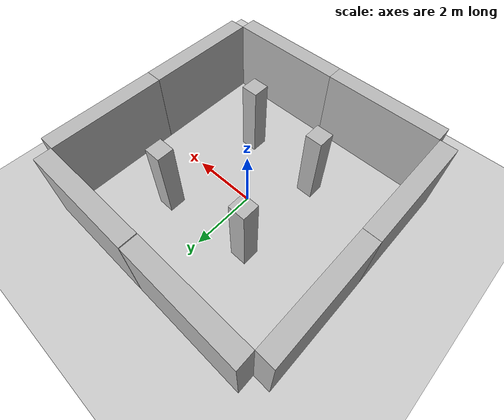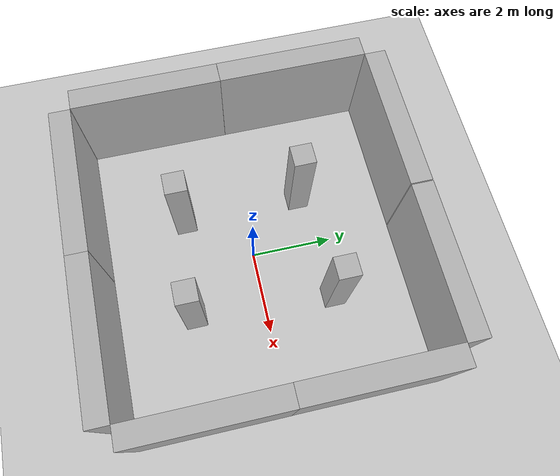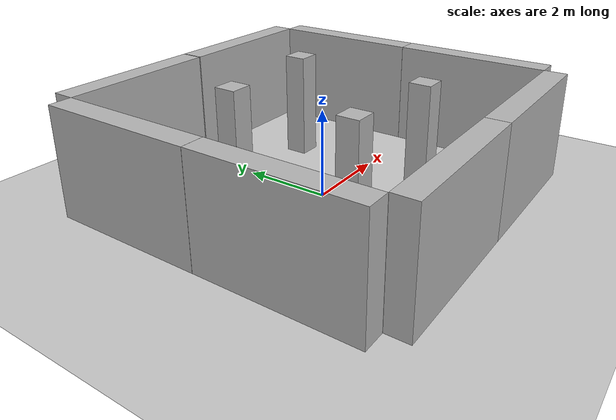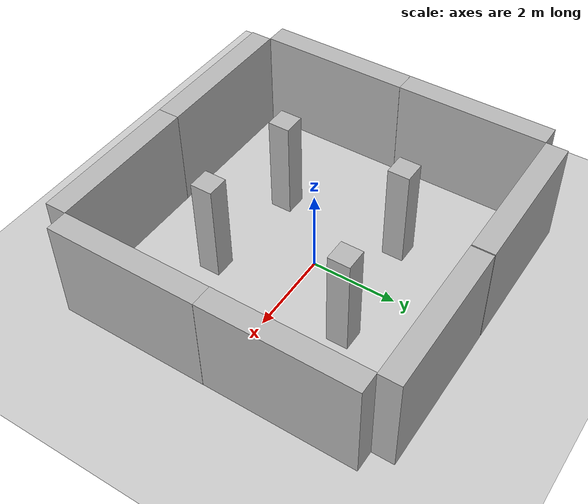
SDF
<sdf version="1.7">
 <world name="default">
  <light name="sun" type="directional">
   <pose>0 0 10 0 -0 0</pose>
   <diffuse>0.8 0.8 0.8 1</diffuse>
   <specular>0.1 0.1 0.1 1</specular>
   <attenuation>
    <range>1000</range>
    <constant>0.9</constant>
    <linear>0.01</linear>
    <quadratic>0.001</quadratic>
   </attenuation>
   <direction>-0.5 0.5 -1</direction>
   <spot><inner_angle>0</inner_angle><outer_angle>0</outer_angle><falloff>0</falloff></spot>
  </light>
  <model name="ground_plane">
   <static>1</static>
   <link name="link">
    <collision name="collision">
     <geometry><plane><normal>0 0 1</normal><size>100 100</size></plane></geometry>
     <surface><friction><ode><mu>100</mu><mu2>50</mu2></ode></friction></surface>
    </collision>
    <visual name="visual">
     <cast_shadows>0</cast_shadows>
     <geometry><plane><normal>0 0 1</normal><size>100 100</size></plane></geometry>
     <material>
      <script><uri>file://media/materials/scripts/gazebo.material</uri><name>Gazebo/Grey</name></script>
     </material>
    </visual>
   </link>
  </model>
  <gravity>0 0 -9.8</gravity>
  <magnetic_field>6e-06 2.3e-05 -4.2e-05</magnetic_field>
  <atmosphere type="adiabatic"/>
  <physics name="default_physics" default="0" type="ode">
   <max_step_size>0.001</max_step_size>
   <real_time_factor>1</real_time_factor>
   <real_time_update_rate>0</real_time_update_rate>
  </physics>
  <scene><ambient>0.4 0.4 0.4 1</ambient><background>0.7 0.7 0.7 1</background><shadows>1</shadows></scene>
  <spherical_coordinates>
   <surface_model>EARTH_WGS84</surface_model>
   <latitude_deg>0</latitude_deg>
   <longitude_deg>0</longitude_deg>
   <elevation>0</elevation>
   <heading_deg>0</heading_deg>
  </spherical_coordinates>
  <model name="mywall0_0">
   <static>1</static>
   <link name="link">
    <pose>0 0 1.4 0 -0 0</pose>
    <collision name="collision"><geometry><box><size>3.5 0.5 2.4</size></box></geometry></collision>
    <visual name="visual">
     <cast_shadows>0</cast_shadows>
     <geometry><box><size>3.5 0.5 2.4</size></box></geometry>
     <material>
      <script>
       <uri>model://mywall0/materials/scripts</uri>
       <uri>model://mywall0/materials/textures</uri>
       <name>vrc/mywall0</name>
      </script>
     </material>
    </visual>
   </link>
   <pose>1.77534 3.75 0 0 -0 0</pose>
  </model>
  <model name="mywall0_1">
   <static>1</static>
   <link name="link">
    <pose>0 0 1.4 0 -0 0</pose>
    <collision name="collision"><geometry><box><size>3.5 0.5 2.4</size></box></geometry></collision>
    <visual name="visual">
     <cast_shadows>0</cast_shadows>
     <geometry><box><size>3.5 0.5 2.4</size></box></geometry>
     <material>
      <script>
       <uri>model://mywall0/materials/scripts</uri>
       <uri>model://mywall0/materials/textures</uri>
       <name>vrc/mywall0</name>
      </script>
     </material>
    </visual>
   </link>
   <pose>-1.74865 3.75 0 0 -0 0</pose>
  </model>
  <model name="mywall0_2">
   <static>1</static>
   <link name="link">
    <pose>0 0 1.4 0 -0 0</pose>
    <collision name="collision"><geometry><box><size>3.5 0.5 2.4</size></box></geometry></collision>
    <visual name="visual">
     <cast_shadows>0</cast_shadows>
     <geometry><box><size>3.5 0.5 2.4</size></box></geometry>
     <material>
      <script>
       <uri>model://mywall0/materials/scripts</uri>
       <uri>model://mywall0/materials/textures</uri>
       <name>vrc/mywall0</name>
      </script>
     </material>
    </visual>
   </link>
   <pose>-1.73951 -3.75 0 0 -0 0</pose>
  </model>
  <model name="mywall0_3">
   <static>1</static>
   <link name="link">
    <pose>0 0 1.4 0 -0 0</pose>
    <collision name="collision"><geometry><box><size>3.5 0.5 2.4</size></box></geometry></collision>
    <visual name="visual">
     <cast_shadows>0</cast_shadows>
     <geometry><box><size>3.5 0.5 2.4</size></box></geometry>
     <material>
      <script>
       <uri>model://mywall0/materials/scripts</uri>
       <uri>model://mywall0/materials/textures</uri>
       <name>vrc/mywall0</name>
      </script>
     </material>
    </visual>
   </link>
   <pose>1.75778 -3.75 0 0 -0 0</pose>
  </model>
  <model name="mywall0_4">
   <static>1</static>
   <link name="link">
    <pose>0 0 1.4 0 -0 0</pose>
    <collision name="collision"><geometry><box><size>3.5 0.5 2.4</size></box></geometry></collision>
    <visual name="visual">
     <cast_shadows>0</cast_shadows>
     <geometry><box><size>3.5 0.5 2.4</size></box></geometry>
     <material>
      <script>
       <uri>model://mywall0/materials/scripts</uri>
       <uri>model://mywall0/materials/textures</uri>
       <name>vrc/mywall0</name>
      </script>
     </material>
    </visual>
   </link>
   <pose>-3.75 1.75 0 0 -0 1.57</pose>
  </model>
  <model name="mywall0_4_clone">
   <static>1</static>
   <link name="link">
    <pose>0 0 1.4 0 -0 0</pose>
    <collision name="collision"><geometry><box><size>3.5 0.5 2.4</size></box></geometry></collision>
    <visual name="visual">
     <cast_shadows>0</cast_shadows>
     <geometry><box><size>3.5 0.5 2.4</size></box></geometry>
     <material>
      <script>
       <uri>model://mywall0/materials/scripts</uri>
       <uri>model://mywall0/materials/textures</uri>
       <name>vrc/mywall0</name>
      </script>
     </material>
    </visual>
   </link>
   <pose>-3.7504 -1.75075 0 0 -0 1.57</pose>
  </model>
  <model name="mywall0_4_clone_0">
   <static>1</static>
   <link name="link">
    <pose>0 0 1.4 0 -0 0</pose>
    <collision name="collision"><geometry><box><size>3.5 0.5 2.4</size></box></geometry></collision>
    <visual name="visual">
     <cast_shadows>0</cast_shadows>
     <geometry><box><size>3.5 0.5 2.4</size></box></geometry>
     <material>
      <script>
       <uri>model://mywall0/materials/scripts</uri>
       <uri>model://mywall0/materials/textures</uri>
       <name>vrc/mywall0</name>
      </script>
     </material>
    </visual>
   </link>
   <pose>3.75 1.75 0 0 -0 1.57</pose>
  </model>
  <model name="mywall0_4_clone_1">
   <static>1</static>
   <link name="link">
    <pose>0 0 1.4 0 -0 0</pose>
    <collision name="collision"><geometry><box><size>3.5 0.5 2.4</size></box></geometry></collision>
    <visual name="visual">
     <cast_shadows>0</cast_shadows>
     <geometry><box><size>3.5 0.5 2.4</size></box></geometry>
     <material>
      <script>
       <uri>model://mywall0/materials/scripts</uri>
       <uri>model://mywall0/materials/textures</uri>
       <name>vrc/mywall0</name>
      </script>
     </material>
    </visual>
   </link>
   <pose>3.75 -1.75 0 0 -0 1.57</pose>
  </model>
  <model name="mypillar_clone_0">
   <static>1</static>
   <link name="link">
    <pose>0 0 1.4 0 -0 0</pose>
    <collision name="collision"><geometry><box><size>0.5 0.5 2.4</size></box></geometry></collision>
    <visual name="visual">
     <cast_shadows>0</cast_shadows>
     <geometry><box><size>0.5 0.5 2.4</size></box></geometry>
     <material>
      <script>
       <uri>model://mypillar/materials/scripts</uri>
       <uri>model://mypillar/materials/textures</uri>
       <name>vrc/mypillar</name>
      </script>
     </material>
    </visual>
   </link>
   <pose>-1.2 1.4 0 0 -0 0</pose>
  </model>
  <model name="mypillar_clone_clone">
   <static>1</static>
   <link name="link">
    <pose>0 0 1.4 0 -0 0</pose>
    <collision name="collision"><geometry><box><size>0.5 0.5 2.4</size></box></geometry></collision>
    <visual name="visual">
     <cast_shadows>0</cast_shadows>
     <geometry><box><size>0.5 0.5 2.4</size></box></geometry>
     <material>
      <script>
       <uri>model://mypillar/materials/scripts</uri>
       <uri>model://mypillar/materials/textures</uri>
       <name>vrc/mypillar</name>
      </script>
     </material>
    </visual>
   </link>
   <pose>-1.15 -1.5 0 0 -0 0</pose>
  </model>
  <model name="mypillar_0_clone">
   <static>1</static>
   <link name="link">
    <pose>0 0 1.4 0 -0 0</pose>
    <collision name="collision"><geometry><box><size>0.5 0.5 2.4</size></box></geometry></collision>
    <visual name="visual">
     <cast_shadows>0</cast_shadows>
     <geometry><box><size>0.5 0.5 2.4</size></box></geometry>
     <material>
      <script>
       <uri>model://mypillar/materials/scripts</uri>
       <uri>model://mypillar/materials/textures</uri>
       <name>vrc/mypillar</name>
      </script>
     </material>
    </visual>
   </link>
   <pose>1.3 -1.7 0 0 -0 0</pose>
  </model>
  <model name="mypillar_1_clone">
   <static>1</static>
   <link name="link">
    <pose>0 0 1.4 0 -0 0</pose>
    <collision name="collision"><geometry><box><size>0.5 0.5 2.4</size></box></geometry></collision>
    <visual name="visual">
     <cast_shadows>0</cast_shadows>
     <geometry><box><size>0.5 0.5 2.4</size></box></geometry>
     <material>
      <script>
       <uri>model://mypillar/materials/scripts</uri>
       <uri>model://mypillar/materials/textures</uri>
       <name>vrc/mypillar</name>
      </script>
     </material>
    </visual>
   </link>
   <pose>1.5 1.65 0 0 -0 0</pose>
  </model>
 </world>
</sdf>
